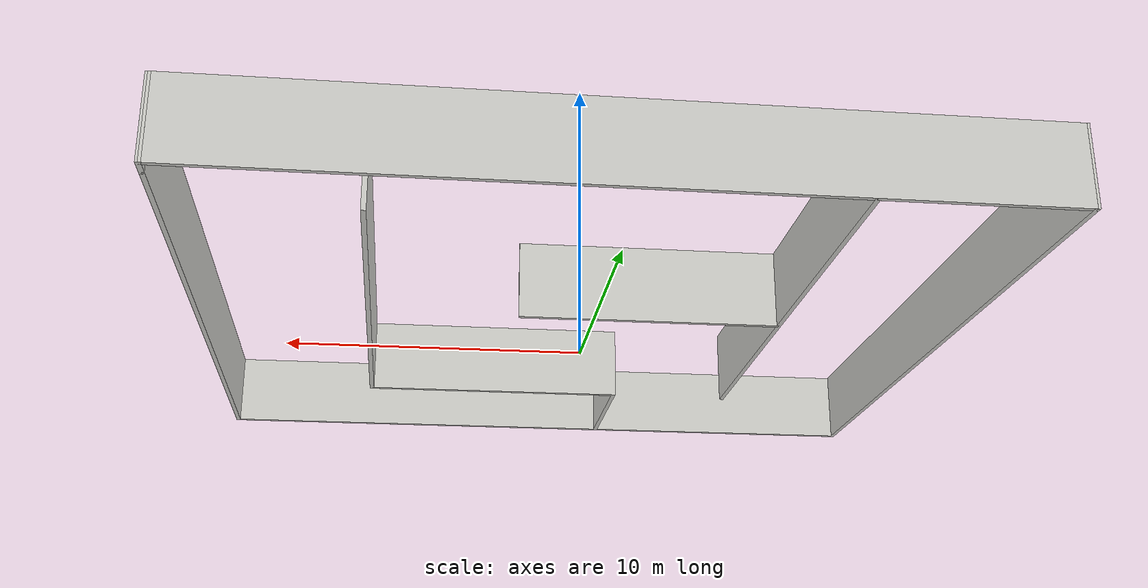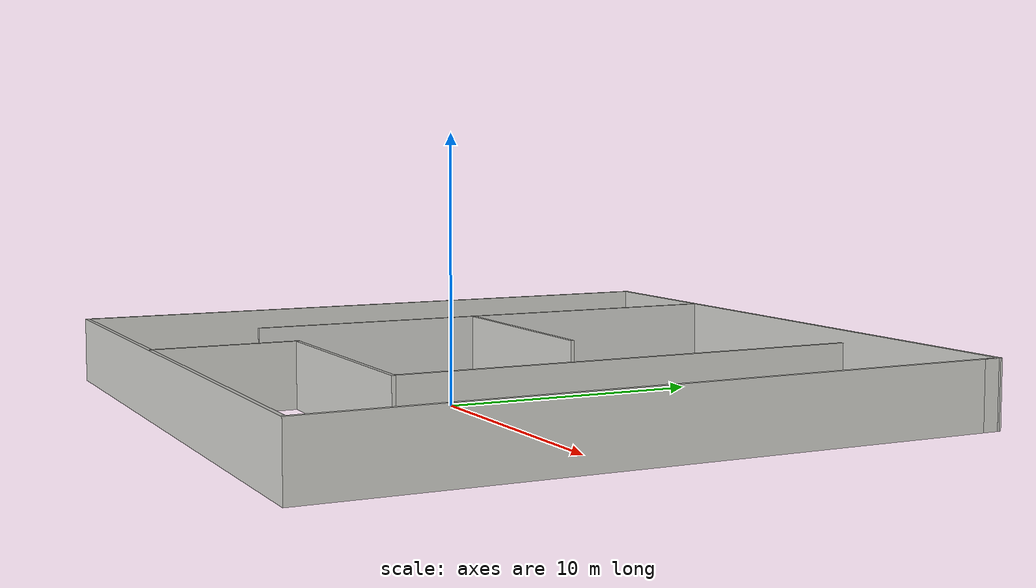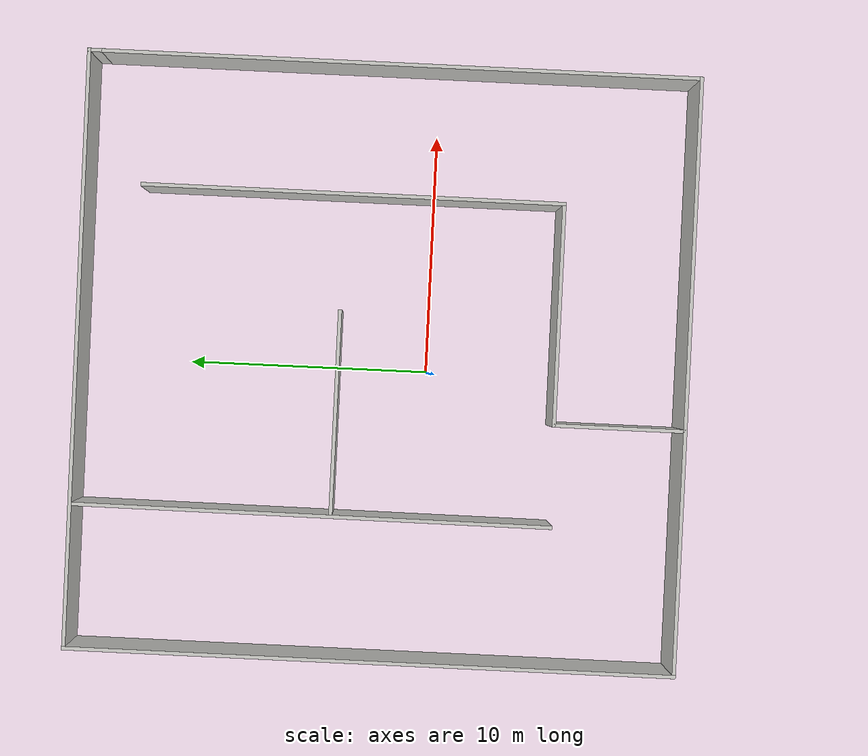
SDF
<?xml version='1.0'?>
<sdf version='1.6'>
  <model name='Untitled'>
    <pose frame=''>0.315753 1.92886 0 0 -0 0</pose>
    <link name='Wall_47'>
      <collision name='Wall_47_Collision'>
        <geometry>
          <box>
            <size>25.25 0.15 2.5</size>
          </box>
        </geometry>
        <pose frame=''>0 0 1.25 0 -0 0</pose>
      </collision>
      <visual name='Wall_47_Visual'>
        <pose frame=''>0 0 1.25 0 -0 0</pose>
        <geometry>
          <box>
            <size>25.25 0.15 2.5</size>
          </box>
        </geometry>
        <material>
          <script>
            <uri>file://media/materials/scripts/gazebo.material</uri>
            <name>Gazebo/CeilingTiled</name>
          </script>
          <ambient>1 0.764706 0.305882 1</ambient>
        </material>
        <meta>
          <layer>0</layer>
        </meta>
      </visual>
      <pose frame=''>-12.3 -0.050151 0 0 0 -1.5708</pose>
    </link>
    <link name='Wall_48'>
      <collision name='Wall_48_Collision'>
        <geometry>
          <box>
            <size>24.75 0.15 2.5</size>
          </box>
        </geometry>
        <pose frame=''>0 0 1.25 0 -0 0</pose>
      </collision>
      <visual name='Wall_48_Visual'>
        <pose frame=''>0 0 1.25 0 -0 0</pose>
        <geometry>
          <box>
            <size>24.75 0.15 2.5</size>
          </box>
        </geometry>
        <material>
          <script>
            <uri>file://media/materials/scripts/gazebo.material</uri>
            <name>Gazebo/CeilingTiled</name>
          </script>
          <ambient>1 0.764706 0.305882 1</ambient>
        </material>
        <meta>
          <layer>0</layer>
        </meta>
      </visual>
      <pose frame=''>0 -12.6002 0 0 -0 0</pose>
    </link>
    <link name='Wall_49'>
      <collision name='Wall_49_Collision'>
        <geometry>
          <box>
            <size>24.75 0.15 2.5</size>
          </box>
        </geometry>
        <pose frame=''>0 0 1.25 0 -0 0</pose>
      </collision>
      <visual name='Wall_49_Visual'>
        <pose frame=''>0 0 1.25 0 -0 0</pose>
        <geometry>
          <box>
            <size>24.75 0.15 2.5</size>
          </box>
        </geometry>
        <material>
          <script>
            <uri>file://media/materials/scripts/gazebo.material</uri>
            <name>Gazebo/CeilingTiled</name>
          </script>
          <ambient>1 0.764706 0.305882 1</ambient>
        </material>
        <meta>
          <layer>0</layer>
        </meta>
      </visual>
      <pose frame=''>12.3 -0.300151 0 0 -0 1.5708</pose>
    </link>
    <link name='Wall_50'>
      <collision name='Wall_50_Collision'>
        <geometry>
          <box>
            <size>0.75 0.15 2.5</size>
          </box>
        </geometry>
        <pose frame=''>0 0 1.25 0 -0 0</pose>
      </collision>
      <visual name='Wall_50_Visual'>
        <pose frame=''>0 0 1.25 0 -0 0</pose>
        <geometry>
          <box>
            <size>0.75 0.15 2.5</size>
          </box>
        </geometry>
        <material>
          <script>
            <uri>file://media/materials/scripts/gazebo.material</uri>
            <name>Gazebo/CeilingTiled</name>
          </script>
          <ambient>1 0.764706 0.305882 1</ambient>
        </material>
        <meta>
          <layer>0</layer>
        </meta>
      </visual>
      <pose frame=''>12.3 12.2998 0 0 -0 1.5708</pose>
    </link>
    <link name='Wall_51'>
      <collision name='Wall_51_Collision'>
        <geometry>
          <box>
            <size>24.7502 0.15 2.5</size>
          </box>
        </geometry>
        <pose frame=''>0 0 1.25 0 -0 0</pose>
      </collision>
      <visual name='Wall_51_Visual'>
        <pose frame=''>0 0 1.25 0 -0 0</pose>
        <geometry>
          <box>
            <size>24.7502 0.15 2.5</size>
          </box>
        </geometry>
        <material>
          <script>
            <uri>file://media/materials/scripts/gazebo.material</uri>
            <name>Gazebo/CeilingTiled</name>
          </script>
          <ambient>1 0.764706 0.305882 1</ambient>
        </material>
        <meta>
          <layer>0</layer>
        </meta>
      </visual>
      <pose frame=''>0 12.5498 0 0 0 -3.13753</pose>
    </link>
    <link name='Wall_53'>
      <collision name='Wall_53_Collision'>
        <geometry>
          <box>
            <size>19.894 0.15 2.5</size>
          </box>
        </geometry>
        <pose frame=''>0 0 1.25 0 -0 0</pose>
      </collision>
      <visual name='Wall_53_Visual'>
        <pose frame=''>0 0 1.25 0 -0 0</pose>
        <geometry>
          <box>
            <size>19.894 0.15 2.5</size>
          </box>
        </geometry>
        <material>
          <script>
            <uri>file://media/materials/scripts/gazebo.material</uri>
            <name>Gazebo/CeilingTiled</name>
          </script>
          <ambient>1 0.764706 0.305882 1</ambient>
        </material>
        <meta>
          <layer>0</layer>
        </meta>
      </visual>
      <pose frame=''>-6.38797 2.62787 0 0 0 -1.57351</pose>
    </link>
    <link name='Wall_56'>
      <collision name='Wall_56_Collision'>
        <geometry>
          <box>
            <size>8.5 0.15 2.5</size>
          </box>
        </geometry>
        <pose frame=''>0 0 1.25 0 -0 0</pose>
      </collision>
      <visual name='Wall_56_Visual'>
        <pose frame=''>0 0 1.25 0 -0 0</pose>
        <geometry>
          <box>
            <size>8.5 0.15 2.5</size>
          </box>
        </geometry>
        <material>
          <script>
            <uri>file://media/materials/scripts/gazebo.material</uri>
            <name>Gazebo/CeilingTiled</name>
          </script>
          <ambient>1 0.764706 0.305882 1</ambient>
        </material>
        <meta>
          <layer>0</layer>
        </meta>
      </visual>
      <pose frame=''>-2.13272 1.79935 0 0 -0 0</pose>
    </link>
    <link name='Wall_59'>
      <collision name='Wall_59_Collision'>
        <geometry>
          <box>
            <size>17.5 0.15 2.5</size>
          </box>
        </geometry>
        <pose frame=''>0 0 1.25 0 -0 0</pose>
      </collision>
      <visual name='Wall_59_Visual'>
        <pose frame=''>0 0 1.25 0 -0 0</pose>
        <geometry>
          <box>
            <size>17.5 0.15 2.5</size>
          </box>
        </geometry>
        <material>
          <script>
            <uri>file://media/materials/scripts/gazebo.material</uri>
            <name>Gazebo/CeilingTiled</name>
          </script>
          <ambient>1 0.764706 0.305882 1</ambient>
        </material>
        <meta>
          <layer>0</layer>
        </meta>
      </visual>
      <pose frame=''>6.89228 1.47435 0 0 0 -1.5708</pose>
    </link>
    <link name='Wall_60'>
      <collision name='Wall_60_Collision'>
        <geometry>
          <box>
            <size>9.25 0.15 2.5</size>
          </box>
        </geometry>
        <pose frame=''>0 0 1.25 0 -0 0</pose>
      </collision>
      <visual name='Wall_60_Visual'>
        <pose frame=''>0 0 1.25 0 -0 0</pose>
        <geometry>
          <box>
            <size>9.25 0.15 2.5</size>
          </box>
        </geometry>
        <material>
          <script>
            <uri>file://media/materials/scripts/gazebo.material</uri>
            <name>Gazebo/CeilingTiled</name>
          </script>
          <ambient>1 0.764706 0.305882 1</ambient>
        </material>
        <meta>
          <layer>0</layer>
        </meta>
      </visual>
      <pose frame=''>2.34228 -7.20065 0 0 -0 3.14159</pose>
    </link>
    <link name='Wall_62'>
      <collision name='Wall_62_Collision'>
        <geometry>
          <box>
            <size>5.5 0.15 2.5</size>
          </box>
        </geometry>
        <pose frame=''>0 0 1.25 0 -0 0</pose>
      </collision>
      <visual name='Wall_62_Visual'>
        <pose frame=''>0 0 1.25 0 -0 0</pose>
        <geometry>
          <box>
            <size>5.5 0.15 2.5</size>
          </box>
        </geometry>
        <material>
          <script>
            <uri>file://media/materials/scripts/gazebo.material</uri>
            <name>Gazebo/CeilingTiled</name>
          </script>
          <ambient>1 0.764706 0.305882 1</ambient>
        </material>
        <meta>
          <layer>0</layer>
        </meta>
      </visual>
      <pose frame=''>-2.20772 -9.87565 0 0 0 -1.5708</pose>
    </link>
    <static>1</static>
  </model>
</sdf>
